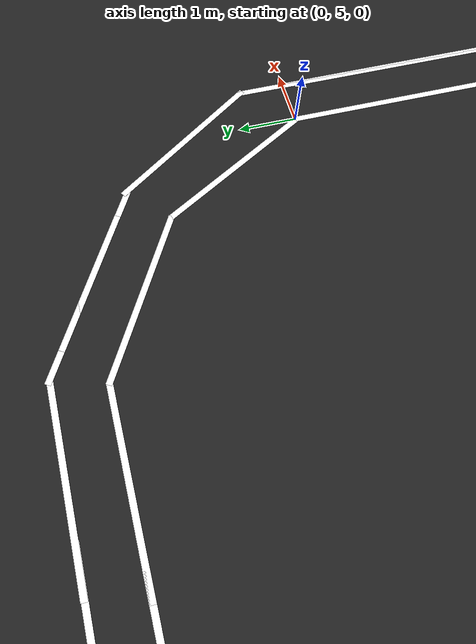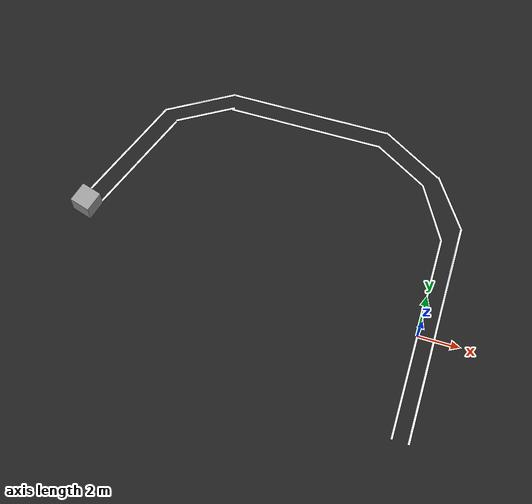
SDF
<sdf version="1.7">
 <world name="default">
  <scene><ambient>1 1 1 1</ambient><background>0 0 0 1</background><shadows>1</shadows></scene>
  <model name="ground_plane">
   <static>1</static>
   <link name="link">
    <collision name="collision">
     <geometry><plane><normal>0 0 1</normal><size>1 1</size></plane></geometry>
    </collision>
    <visual name="visual">
     <geometry><plane><normal>0 0 1</normal><size>1 1</size></plane></geometry>
     <material>
      <script><uri>file://media/materials/scripts/gazebo.material</uri><name>Gazebo/Black</name></script>
     </material>
    </visual>
   </link>
  </model>
  <model name="straight1">
   <static>1</static>
   <link name="link">
    <visual name="visual">
     <geometry><box><size>0.1 10 0.01</size></box></geometry>
     <material><ambient>1 1 1 1</ambient></material>
    </visual>
   </link>
  </model>
  <model name="curve2">
   <pose>-5.75867 0.7734 0 0 -0 0</pose>
   <static>1</static>
   <link name="link">
    <visual name="visual">
     <geometry><box><size>0.1 3 0.01</size></box></geometry>
     <material><ambient>1 1 1 1</ambient></material>
    </visual>
    <pose>3 7.5 0 0 -0 1.0472</pose>
   </link>
  </model>
  <model name="curve3">
   <pose>-10.0351 -0.9905 0 0 -0 0</pose>
   <static>1</static>
   <link name="link">
    <visual name="visual">
     <geometry><box><size>0.1 3 0.01</size></box></geometry>
     <material><ambient>1 1 1 1</ambient></material>
    </visual>
    <pose>4.5 10 0 0 -0 1.5708</pose>
   </link>
  </model>
  <gravity>0 0 -9.8</gravity>
  <magnetic_field>6e-06 2.3e-05 -4.2e-05</magnetic_field>
  <atmosphere type="adiabatic"/>
  <physics type="ode">
   <max_step_size>0.001</max_step_size>
   <real_time_factor>1</real_time_factor>
   <real_time_update_rate>1000</real_time_update_rate>
  </physics>
  <audio><device>default</device></audio>
  <spherical_coordinates>
   <surface_model>EARTH_WGS84</surface_model>
   <latitude_deg>0</latitude_deg>
   <longitude_deg>0</longitude_deg>
   <elevation>0</elevation>
   <heading_deg>0</heading_deg>
  </spherical_coordinates>
  <model name="curve1_0">
   <link name="link">
    <pose>-0.729404 6.21629 0 0 -0 0.523599</pose>
    <visual name="visual">
     <geometry><box><size>0.1 3 0.01</size></box></geometry>
     <material>
      <ambient>1 1 1 1</ambient>
      <shader type="pixel"/>
      <script><name>ModelPreview_1::link::visual_MATERIAL_</name><uri>__default__</uri></script>
     </material>
    </visual>
   </link>
   <static>1</static>
   <pose>-0.016473 0.04661 0 0 -0 0</pose>
  </model>
  <model name="straight1_clone">
   <static>1</static>
   <link name="link">
    <visual name="visual">
     <geometry><box><size>0.1 10 0.01</size></box></geometry>
     <material><ambient>1 1 1 1</ambient></material>
    </visual>
   </link>
   <pose>0.787913 -0.032736 0 0 -0 0</pose>
  </model>
  <model name="straight1_clone_0">
   <static>1</static>
   <link name="link">
    <visual name="visual">
     <geometry><box><size>0.1 10 0.01</size></box></geometry>
     <material><ambient>1 1 1 1</ambient></material>
    </visual>
   </link>
   <pose>0.791471 0.811603 0 0 -0 0</pose>
  </model>
  <model name="curve1_0_clone">
   <link name="link">
    <pose>-0.729404 6.21629 0 0 -0 0.523599</pose>
    <visual name="visual">
     <geometry><box><size>0.1 3 0.01</size></box></geometry>
     <material>
      <ambient>1 1 1 1</ambient>
      <shader type="pixel"/>
      <script><name>ModelPreview_1::link::visual_MATERIAL_</name><uri>__default__</uri></script>
     </material>
    </visual>
   </link>
   <static>1</static>
   <pose>1.18643 0.828302 0 0 -0 0.077153</pose>
  </model>
  <model name="curve2_clone">
   <static>1</static>
   <link name="link">
    <visual name="visual">
     <geometry><box><size>0.1 3 0.01</size></box></geometry>
     <material><ambient>1 1 1 1</ambient></material>
    </visual>
    <pose>3 7.5 0 0 -0 1.0472</pose>
   </link>
   <pose>-5.55316 1.62002 0.000621 0 -0 0</pose>
  </model>
  <model name="curve3_clone">
   <static>1</static>
   <link name="link">
    <visual name="visual">
     <geometry><box><size>0.1 3 0.01</size></box></geometry>
     <material><ambient>1 1 1 1</ambient></material>
    </visual>
    <pose>4.5 10 0 0 -0 1.5708</pose>
   </link>
   <pose>-9.80732 -0.16677 0 0 -0 0</pose>
  </model>
  <model name="curve2_clone_clone">
   <static>1</static>
   <link name="link">
    <visual name="visual">
     <geometry><box><size>0.1 3 0.01</size></box></geometry>
     <material><ambient>1 1 1 1</ambient></material>
    </visual>
    <pose>3 7.5 0 0 -0 1.0472</pose>
   </link>
   <pose>-5.08265 1.34748 -0.061503 0.007876 -0 3e-06</pose>
  </model>
  <model name="curve3_clone_clone">
   <static>1</static>
   <link name="link">
    <visual name="visual">
     <geometry><box><size>0.1 3 0.01</size></box></geometry>
     <material><ambient>1 1 1 1</ambient></material>
    </visual>
    <pose>4.5 10 0 0 -0 1.5708</pose>
   </link>
   <pose>-12.0596 -0.175 0 0 -0 0</pose>
  </model>
  <model name="curve3_clone_clone_0">
   <static>1</static>
   <link name="link">
    <visual name="visual">
     <geometry><box><size>0.1 3 0.01</size></box></geometry>
     <material><ambient>1 1 1 1</ambient></material>
    </visual>
    <pose>4.5 10 0 0 -0 1.5708</pose>
   </link>
   <pose>-12.6227 -0.99192 0 0 -0 0</pose>
  </model>
  <model name="curve3_clone_clone_1">
   <static>1</static>
   <link name="link">
    <visual name="visual">
     <geometry><box><size>0.1 3 0.01</size></box></geometry>
     <material><ambient>1 1 1 1</ambient></material>
    </visual>
    <pose>4.5 10 0 0 -0 1.5708</pose>
   </link>
   <pose>-158.933 597.429 0 0 -0 0</pose>
  </model>
  <model name="curve3_clone_clone_2">
   <static>1</static>
   <link name="link">
    <visual name="visual">
     <geometry><box><size>0.1 3 0.01</size></box></geometry>
     <material><ambient>1 1 1 1</ambient></material>
    </visual>
    <pose>4.5 10 0 0 -0 1.5708</pose>
   </link>
   <pose>-14.5591 -0.98966 0 0 -0 0</pose>
  </model>
  <model name="curve3_clone_clone_3">
   <static>1</static>
   <link name="link">
    <visual name="visual">
     <geometry><box><size>0.1 3 0.01</size></box></geometry>
     <material><ambient>1 1 1 1</ambient></material>
    </visual>
    <pose>4.5 10 0 0 -0 1.5708</pose>
   </link>
   <pose>-14.7257 -0.17147 0 0 -0 0</pose>
  </model>
  <model name="curve1_0_clone_0">
   <link name="link">
    <pose>-0.729404 6.21629 0 0 -0 0.523599</pose>
    <visual name="visual">
     <geometry><box><size>0.1 3 0.01</size></box></geometry>
     <material>
      <ambient>1 1 1 1</ambient>
      <shader type="pixel"/>
      <script><name>ModelPreview_1::link::visual_MATERIAL_</name><uri>__default__</uri></script>
     </material>
    </visual>
   </link>
   <static>1</static>
   <pose>-18.9641 7.66896 0 0 0 -1.57428</pose>
  </model>
  <model name="curve1_0_clone_0_clone">
   <link name="link">
    <pose>-0.729404 6.21629 0 0 -0 0.523599</pose>
    <visual name="visual">
     <geometry><box><size>0.1 3 0.01</size></box></geometry>
     <material>
      <ambient>1 1 1 1</ambient>
      <shader type="pixel"/>
      <script><name>ModelPreview_1::link::visual_MATERIAL_</name><uri>__default__</uri></script>
     </material>
    </visual>
   </link>
   <static>1</static>
   <pose>-19.1625 8.3895 0 0 0 -1.57428</pose>
  </model>
  <model name="curve1_0_clone_0_clone_0">
   <link name="link">
    <pose>-0.729404 6.21629 0 0 -0 0.523599</pose>
    <visual name="visual">
     <geometry><box><size>0.1 3 0.01</size></box></geometry>
     <material>
      <ambient>1 1 1 1</ambient>
      <shader type="pixel"/>
      <script><name>ModelPreview_1::link::visual_MATERIAL_</name><uri>__default__</uri></script>
     </material>
    </visual>
   </link>
   <static>1</static>
   <pose>-19.6645 8.0953 0 0 0 -1.57428</pose>
  </model>
  <model name="curve1_0_clone_0_clone_1">
   <link name="link">
    <pose>-0.729404 6.21629 0 0 -0 0.523599</pose>
    <visual name="visual">
     <geometry><box><size>0.1 3 0.01</size></box></geometry>
     <material>
      <ambient>1 1 1 1</ambient>
      <shader type="pixel"/>
      <script><name>ModelPreview_1::link::visual_MATERIAL_</name><uri>__default__</uri></script>
     </material>
    </visual>
   </link>
   <static>1</static>
   <pose>-19.0716 1.85122 0 0 0 -0.917387</pose>
  </model>
  <model name="curve1_0_clone_0_clone_1_clone">
   <link name="link">
    <pose>-0.729404 6.21629 0 0 -0 0.523599</pose>
    <visual name="visual">
     <geometry><box><size>0.1 3 0.01</size></box></geometry>
     <material>
      <ambient>1 1 1 1</ambient>
      <shader type="pixel"/>
      <script><name>ModelPreview_1::link::visual_MATERIAL_</name><uri>__default__</uri></script>
     </material>
    </visual>
   </link>
   <static>1</static>
   <pose>-19.7543 2.38771 0 0 0 -0.917387</pose>
  </model>
  <model name="curve1_0_clone_0_clone_1_clone_0">
   <link name="link">
    <pose>-0.729404 6.21629 0 0 -0 0.523599</pose>
    <visual name="visual">
     <geometry><box><size>0.1 3 0.01</size></box></geometry>
     <material>
      <ambient>1 1 1 1</ambient>
      <shader type="pixel"/>
      <script><name>ModelPreview_1::link::visual_MATERIAL_</name><uri>__default__</uri></script>
     </material>
    </visual>
   </link>
   <static>1</static>
   <pose>-20.1408 -0.733205 0 0 0 -0.917387</pose>
  </model>
  <model name="curve1_0_clone_0_clone_1_clone_1">
   <link name="link">
    <pose>-0.729404 6.21629 0 0 -0 0.523599</pose>
    <visual name="visual">
     <geometry><box><size>0.1 3 0.01</size></box></geometry>
     <material>
      <ambient>1 1 1 1</ambient>
      <shader type="pixel"/>
      <script><name>ModelPreview_1::link::visual_MATERIAL_</name><uri>__default__</uri></script>
     </material>
    </visual>
   </link>
   <static>1</static>
   <pose>-20.8967 -0.345382 0 0 0 -0.917387</pose>
  </model>
  <model name="unit_box">
   <pose>-16.6892 2.05083 0.5 0 0 -0.29945</pose>
   <link name="link">
    <inertial>
     <mass>1</mass>
     <inertia>
      <ixx>0.166667</ixx>
      <ixy>0</ixy>
      <ixz>0</ixz>
      <iyy>0.166667</iyy>
      <iyz>0</iyz>
      <izz>0.166667</izz>
     </inertia>
    </inertial>
    <collision name="collision"><geometry><box><size>1 1 1</size></box></geometry></collision>
    <visual name="visual">
     <geometry><box><size>1 1 1</size></box></geometry>
     <material>
      <script><name>Gazebo/Grey</name><uri>file://media/materials/scripts/gazebo.material</uri></script>
     </material>
    </visual>
   </link>
  </model>
 </world>
</sdf>
